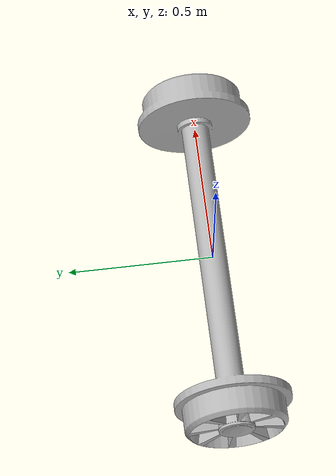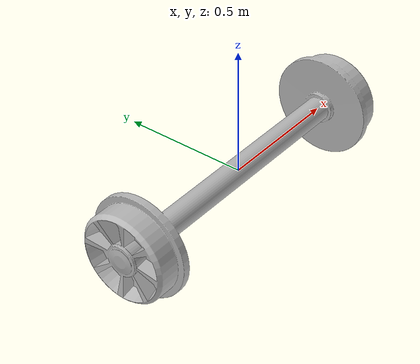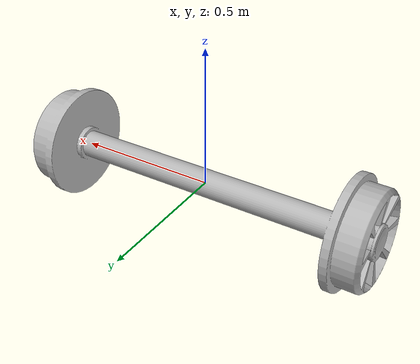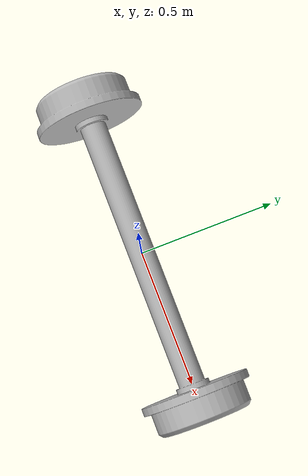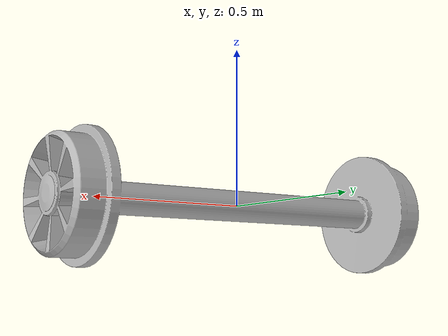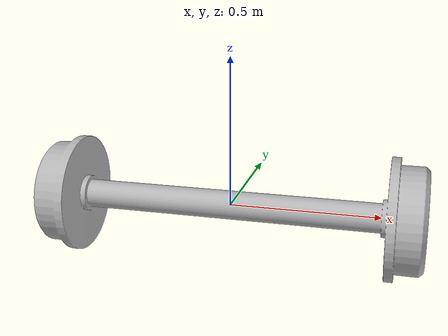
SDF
<?xml version="1.0" ?>
<sdf version="1.7">
  <model name="amp_axle">
    <static>false</static>
    <link name="link">
      <static>false</static>
      <gravity>true</gravity>
      <visual name="visual">
        <geometry>
          <mesh>
            <uri>model://amp_axle/amp_axle.obj</uri>
            <scale>1 1 1</scale>
          </mesh>
        </geometry>
      </visual>
      <collision name="collision">
        <geometry>
          <mesh>
            <uri>model://amp_axle/amp_axle.obj</uri>
          </mesh>
        </geometry>
      </collision>
    </link>
  </model>
</sdf>
